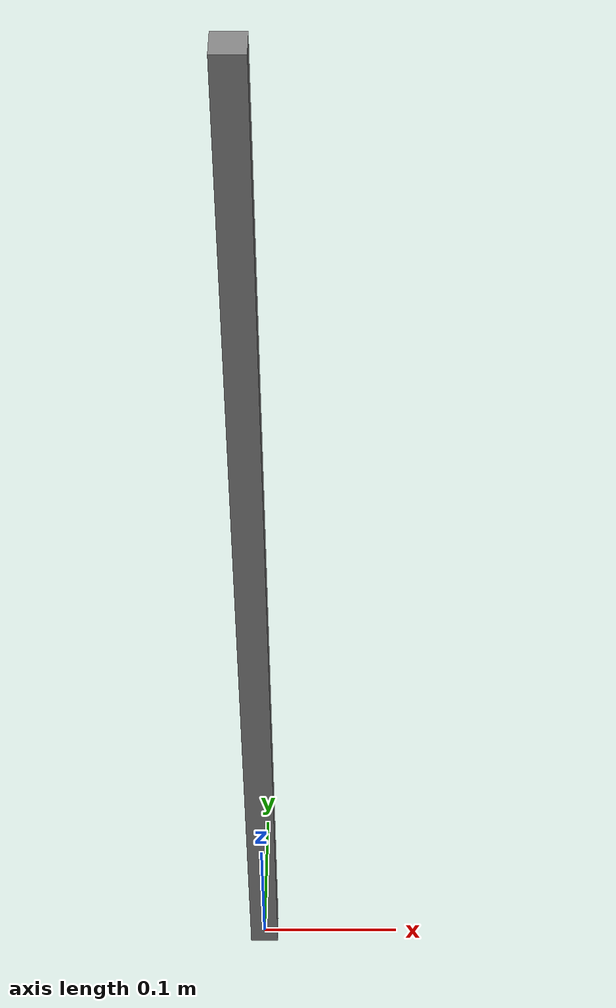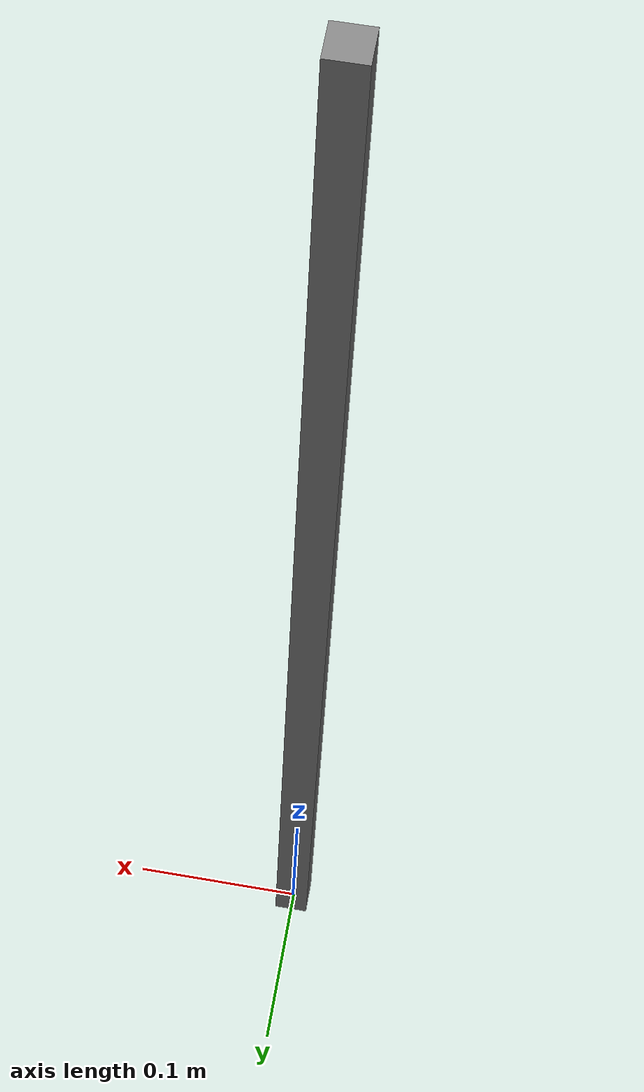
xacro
<?xml version="1.0"?>
<robot xmlns:xacro="http://ros.org/wiki/xacro" name="table_box">
  <link name="table_box_link">
    <visual>
      <geometry>
        <box size="0.02 0.02 0.8"/>
      </geometry>
      <origin xyz="0 0 0.4" rpy="0 0 0"/>
      <material name="gray">
        <color rgba="0.5 0.5 0.5 1.0"/>
      </material>
    </visual>
    <collision>
      <geometry>
        <box size="0.02 0.02 0.8"/>
      </geometry>
      <origin xyz="0 0 0.4" rpy="0 0 0"/>
    </collision>
    <inertial>
      <mass value="0.1"/>
      <inertia ixx="1e-5" ixy="0" ixz="0" iyy="1e-5" iyz="0" izz="1e-5"/>
      <origin xyz="0 0 0.4"/>
    </inertial>
  </link>
</robot>
